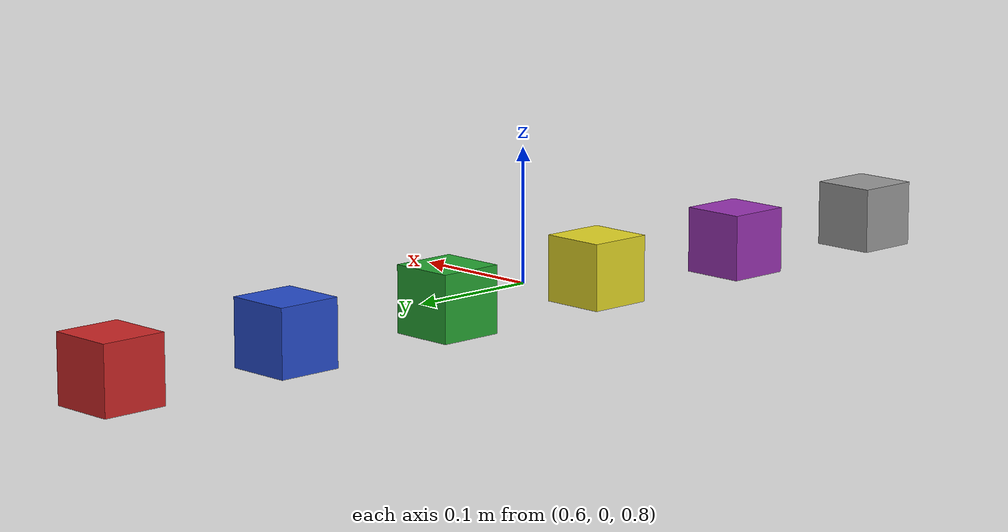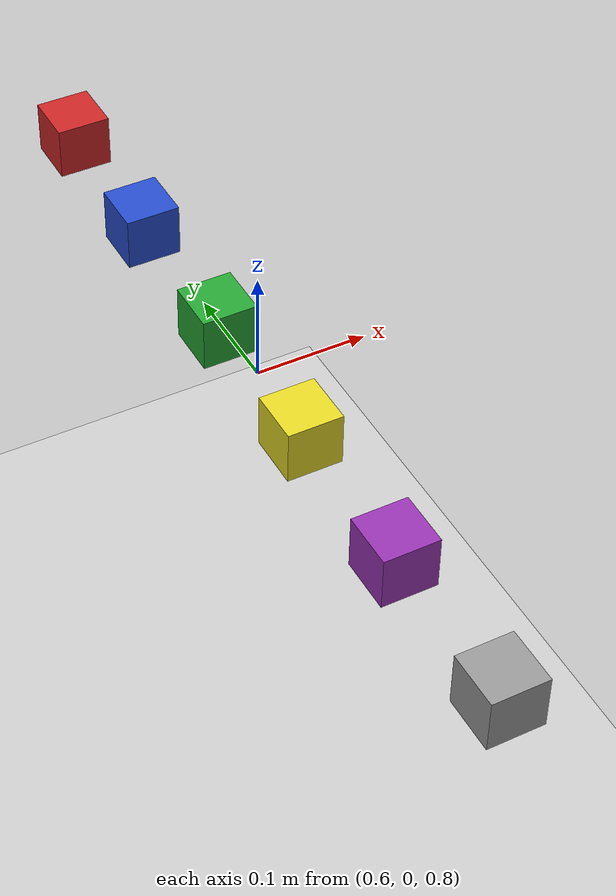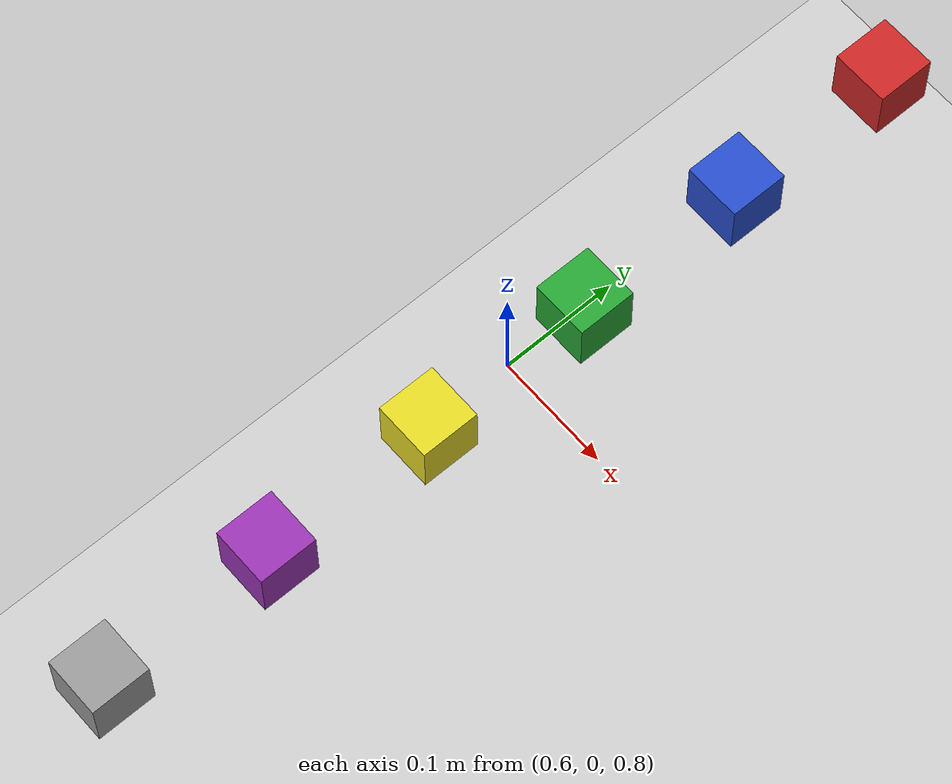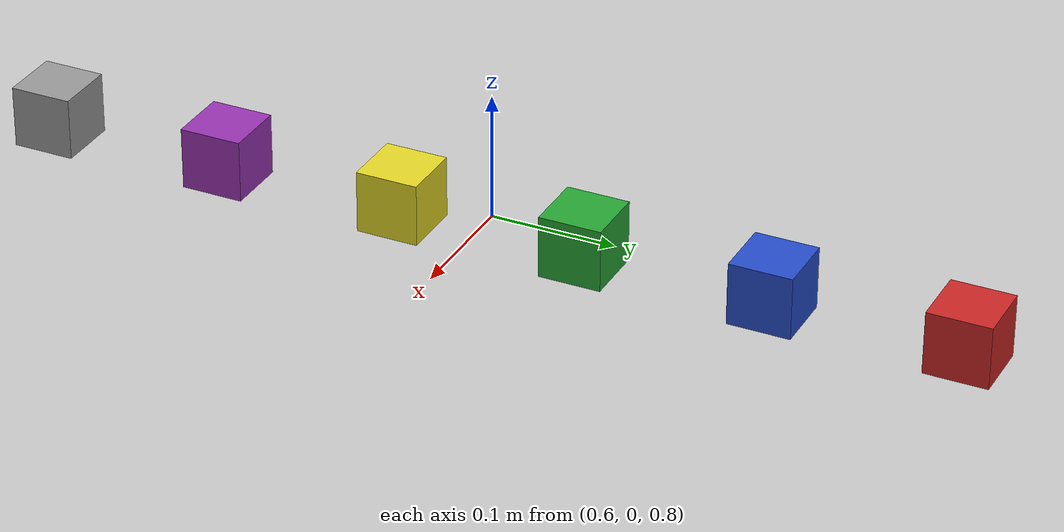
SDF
<sdf version="1.6">
 <world name="ur5_6_cubes">
  <gravity>0 0 -9.81</gravity>
  <physics name="default_physics" default="0" type="ode">
   <max_step_size>0.001</max_step_size>
   <real_time_factor>1</real_time_factor>
   <real_time_update_rate>1000</real_time_update_rate>
  </physics>
  <scene><ambient>0.4 0.4 0.4 1</ambient><background>0.7 0.7 0.7 1</background><shadows>1</shadows></scene>
  <include><uri>model://sun</uri></include>
  <include><uri>model://ground_plane</uri></include>
  <model name="cube1">
   <pose>0.6 0.375 0.775 0 0 0</pose>
   <link name="link">
    <pose>0 0 0.025 0 0 0</pose>
    <inertial>
     <mass>0.0565</mass>
     <inertia>
      <ixx>2.3541666666666672e-05</ixx>
      <ixy>0</ixy>
      <ixz>0</ixz>
      <iyy>2.3541666666666672e-05</iyy>
      <iyz>0</iyz>
      <izz>2.3541666666666672e-05</izz>
     </inertia>
    </inertial>
    <collision name="collision">
     <geometry><box><size>0.05 0.05 0.05</size></box></geometry>
     <surface>
      <contact>
       <poissons_ratio>0.347</poissons_ratio>
       <elastic_modulus>8.8e+09</elastic_modulus>
       <ode><kp>100000</kp><kd>1</kd><max_vel>1.0</max_vel><min_depth>0.001</min_depth></ode>
      </contact>
      <friction>
       <torsional>
        <coefficient>1.0</coefficient>
        <use_patch_radius>0</use_patch_radius>
        <surface_radius>0.05</surface_radius>
       </torsional>
      </friction>
     </surface>
    </collision>
    <visual name="visual">
     <geometry><box><size>0.05 0.05 0.05</size></box></geometry>
     <material>
      <script><uri>file://media/materials/scripts/gazebo.material</uri><name>Gazebo/Red</name></script>
     </material>
    </visual>
   </link>
  </model>
  <model name="cube2">
   <pose>0.6 0.225 0.775 0 0 0</pose>
   <link name="link">
    <pose>0 0 0.025 0 0 0</pose>
    <inertial>
     <mass>0.0565</mass>
     <inertia>
      <ixx>2.3541666666666672e-05</ixx>
      <ixy>0</ixy>
      <ixz>0</ixz>
      <iyy>2.3541666666666672e-05</iyy>
      <iyz>0</iyz>
      <izz>2.3541666666666672e-05</izz>
     </inertia>
    </inertial>
    <collision name="collision">
     <geometry><box><size>0.05 0.05 0.05</size></box></geometry>
     <surface>
      <contact>
       <poissons_ratio>0.347</poissons_ratio>
       <elastic_modulus>8.8e+09</elastic_modulus>
       <ode><kp>100000</kp><kd>1</kd><max_vel>1.0</max_vel><min_depth>0.001</min_depth></ode>
      </contact>
      <friction>
       <torsional>
        <coefficient>1.0</coefficient>
        <use_patch_radius>0</use_patch_radius>
        <surface_radius>0.05</surface_radius>
       </torsional>
      </friction>
     </surface>
    </collision>
    <visual name="visual">
     <geometry><box><size>0.05 0.05 0.05</size></box></geometry>
     <material>
      <script><uri>file://media/materials/scripts/gazebo.material</uri><name>Gazebo/Blue</name></script>
     </material>
    </visual>
   </link>
  </model>
  <model name="cube3">
   <pose>0.6 0.075 0.775 0 0 0</pose>
   <link name="link">
    <pose>0 0 0.025 0 0 0</pose>
    <inertial>
     <mass>0.0565</mass>
     <inertia>
      <ixx>2.3541666666666672e-05</ixx>
      <ixy>0</ixy>
      <ixz>0</ixz>
      <iyy>2.3541666666666672e-05</iyy>
      <iyz>0</iyz>
      <izz>2.3541666666666672e-05</izz>
     </inertia>
    </inertial>
    <collision name="collision">
     <geometry><box><size>0.05 0.05 0.05</size></box></geometry>
     <surface>
      <contact>
       <poissons_ratio>0.347</poissons_ratio>
       <elastic_modulus>8.8e+09</elastic_modulus>
       <ode><kp>100000</kp><kd>1</kd><max_vel>1.0</max_vel><min_depth>0.001</min_depth></ode>
      </contact>
      <friction>
       <torsional>
        <coefficient>1.0</coefficient>
        <use_patch_radius>0</use_patch_radius>
        <surface_radius>0.05</surface_radius>
       </torsional>
      </friction>
     </surface>
    </collision>
    <visual name="visual">
     <geometry><box><size>0.05 0.05 0.05</size></box></geometry>
     <material>
      <script><uri>file://media/materials/scripts/gazebo.material</uri><name>Gazebo/Green</name></script>
     </material>
    </visual>
   </link>
  </model>
  <model name="cube4">
   <pose>0.6 -0.075 0.775 0 0 0</pose>
   <link name="link">
    <pose>0 0 0.025 0 0 0</pose>
    <inertial>
     <mass>0.0565</mass>
     <inertia>
      <ixx>2.3541666666666672e-05</ixx>
      <ixy>0</ixy>
      <ixz>0</ixz>
      <iyy>2.3541666666666672e-05</iyy>
      <iyz>0</iyz>
      <izz>2.3541666666666672e-05</izz>
     </inertia>
    </inertial>
    <collision name="collision">
     <geometry><box><size>0.05 0.05 0.05</size></box></geometry>
     <surface>
      <contact>
       <poissons_ratio>0.347</poissons_ratio>
       <elastic_modulus>8.8e+09</elastic_modulus>
       <ode><kp>100000</kp><kd>1</kd><max_vel>1.0</max_vel><min_depth>0.001</min_depth></ode>
      </contact>
      <friction>
       <torsional>
        <coefficient>1.0</coefficient>
        <use_patch_radius>0</use_patch_radius>
        <surface_radius>0.05</surface_radius>
       </torsional>
      </friction>
     </surface>
    </collision>
    <visual name="visual">
     <geometry><box><size>0.05 0.05 0.05</size></box></geometry>
     <material>
      <script><uri>file://media/materials/scripts/gazebo.material</uri><name>Gazebo/Yellow</name></script>
     </material>
    </visual>
   </link>
  </model>
  <model name="cube5">
   <pose>0.6 -0.225 0.775 0 0 0</pose>
   <link name="link">
    <pose>0 0 0.025 0 0 0</pose>
    <inertial>
     <mass>0.0565</mass>
     <inertia>
      <ixx>2.3541666666666672e-05</ixx>
      <ixy>0</ixy>
      <ixz>0</ixz>
      <iyy>2.3541666666666672e-05</iyy>
      <iyz>0</iyz>
      <izz>2.3541666666666672e-05</izz>
     </inertia>
    </inertial>
    <collision name="collision">
     <geometry><box><size>0.05 0.05 0.05</size></box></geometry>
     <surface>
      <contact>
       <poissons_ratio>0.347</poissons_ratio>
       <elastic_modulus>8.8e+09</elastic_modulus>
       <ode><kp>100000</kp><kd>1</kd><max_vel>1.0</max_vel><min_depth>0.001</min_depth></ode>
      </contact>
      <friction>
       <torsional>
        <coefficient>1.0</coefficient>
        <use_patch_radius>0</use_patch_radius>
        <surface_radius>0.05</surface_radius>
       </torsional>
      </friction>
     </surface>
    </collision>
    <visual name="visual">
     <geometry><box><size>0.05 0.05 0.05</size></box></geometry>
     <material>
      <script><uri>file://media/materials/scripts/gazebo.material</uri><name>Gazebo/Purple</name></script>
     </material>
    </visual>
   </link>
  </model>
  <model name="cube6">
   <pose>0.6 -0.375 0.775 0 0 0</pose>
   <link name="link">
    <pose>0 0 0.025 0 0 0</pose>
    <inertial>
     <mass>0.0565</mass>
     <inertia>
      <ixx>2.3541666666666672e-05</ixx>
      <ixy>0</ixy>
      <ixz>0</ixz>
      <iyy>2.3541666666666672e-05</iyy>
      <iyz>0</iyz>
      <izz>2.3541666666666672e-05</izz>
     </inertia>
    </inertial>
    <collision name="collision">
     <geometry><box><size>0.05 0.05 0.05</size></box></geometry>
     <surface>
      <contact>
       <poissons_ratio>0.347</poissons_ratio>
       <elastic_modulus>8.8e+09</elastic_modulus>
       <ode><kp>100000</kp><kd>1</kd><max_vel>1.0</max_vel><min_depth>0.001</min_depth></ode>
      </contact>
      <friction>
       <torsional>
        <coefficient>1.0</coefficient>
        <use_patch_radius>0</use_patch_radius>
        <surface_radius>0.05</surface_radius>
       </torsional>
      </friction>
     </surface>
    </collision>
    <visual name="visual">
     <geometry><box><size>0.05 0.05 0.05</size></box></geometry>
     <material>
      <script><uri>file://media/materials/scripts/gazebo.material</uri><name>Gazebo/Grey</name></script>
     </material>
    </visual>
   </link>
  </model>
 </world>
</sdf>
